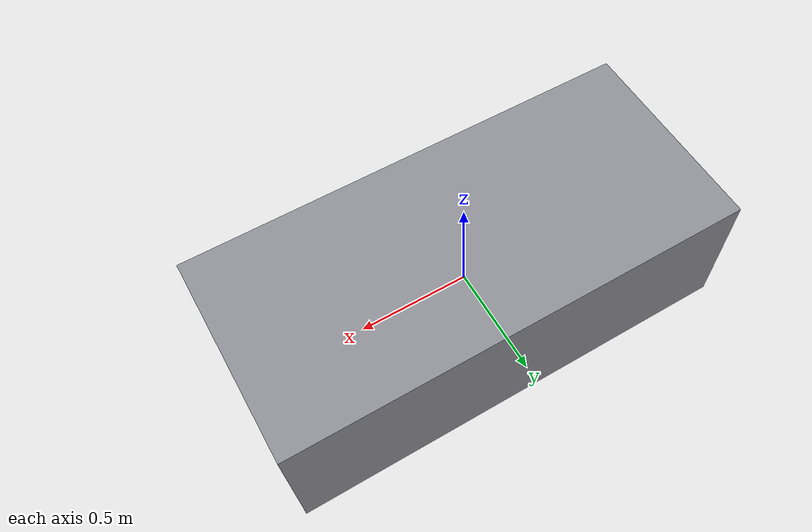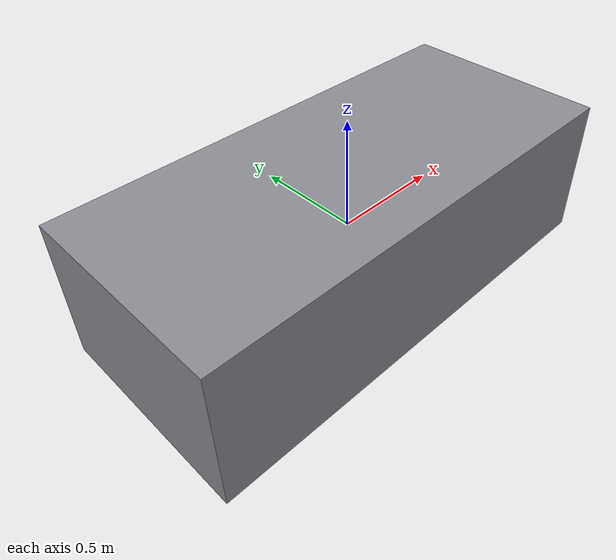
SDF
<?xml version="1.0"?>
<sdf version="1.6">
  <model name="TrolleyBed">
    <static>true</static>
    <link name="link">
      <collision name="col">
        <geometry>
          <box>
            <size>2.1 0.95 0.65</size>
          </box>
        </geometry>
      </collision>
      <visual name="vis">
        <geometry>
          <box>
            <size>2.1 0.95 0.65</size>
          </box>
        </geometry>
        <material>
          <ambient>0.55 0.55 0.58 1</ambient>
          <diffuse>0.55 0.55 0.58 1</diffuse>
        </material>
      </visual>
    </link>
  </model>
</sdf>
